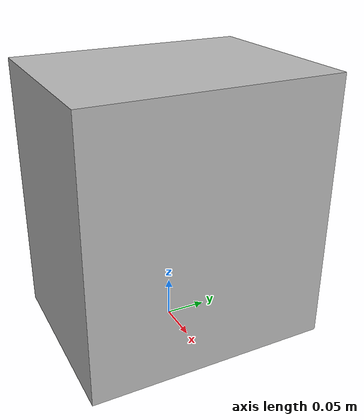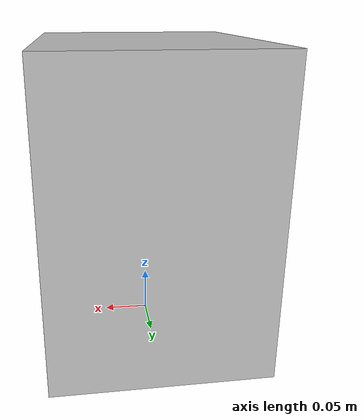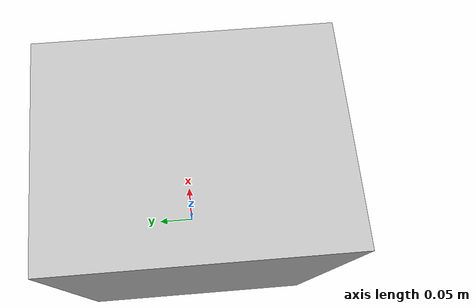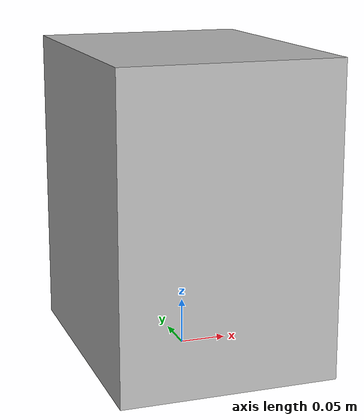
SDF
<?xml version="1.0"?>
<sdf version="1.6">
  <model name="rwc2018/dustbin1">
    <link name="1_link">
      <collision name="1_col">
        <geometry>
          <box>
            <size>0.23 0.3 0.33</size>
          </box>
        </geometry>
      </collision>
      <visual name="1_vis">
        <geometry>
          <box>
            <size>0.23 0.3 0.33</size>
          </box>
        </geometry>
      </visual>
      <pose>0 0 0.165 0 0 0</pose>
    </link>
    <link name="on_top_of">
      <virtual_volume name="on_top_of_vv">
        <geometry>
          <box>
            <size>0.21 0.24 0.25</size>
          </box>
        </geometry>
        <pose>0.0 0.0 0.475 0 0 0</pose>
      </virtual_volume>
    </link>
    <link name="in_front_of">
      <virtual_volume name="in_front_of_vv">
        <geometry>
          <box>
            <size>0.2 0.1 0.01</size>
          </box>
        </geometry>
        <pose>0.615 0.0 0.005 0 0 0</pose>
      </virtual_volume>
    </link>
    <static>true</static>
  </model>
</sdf>
